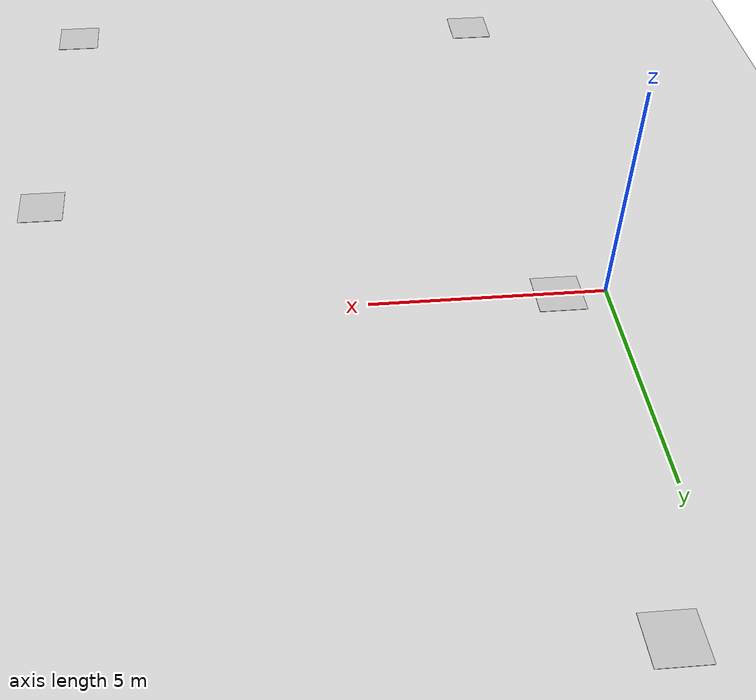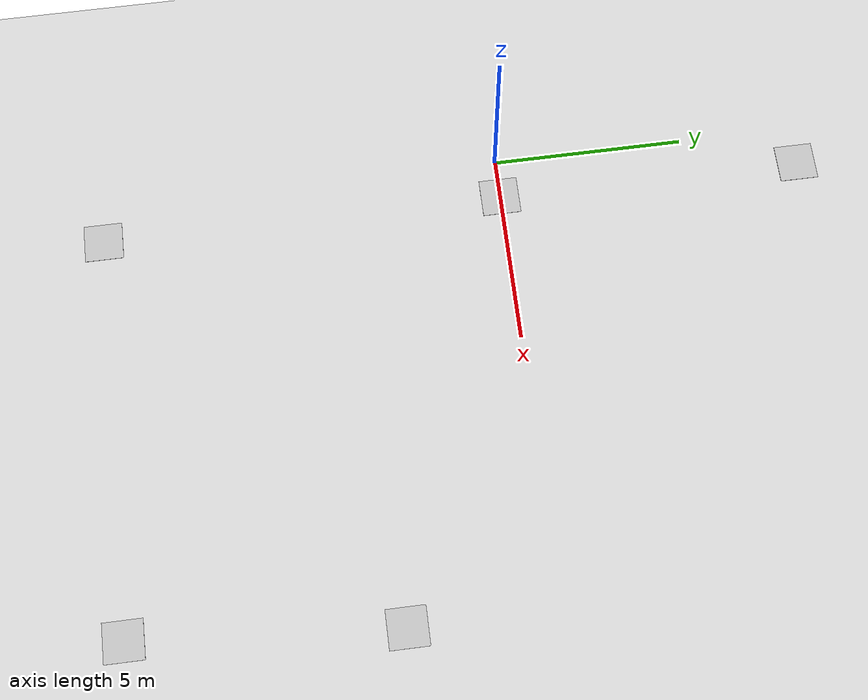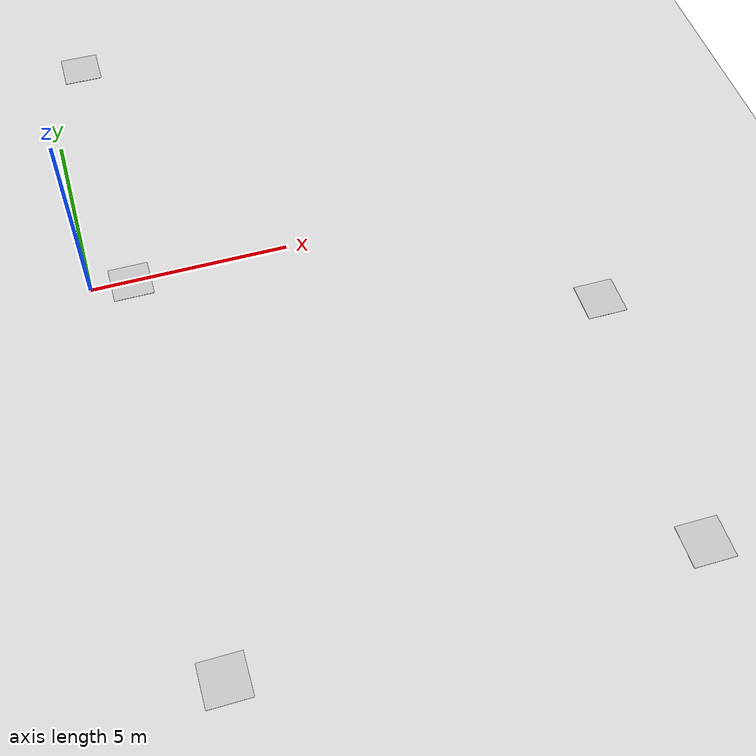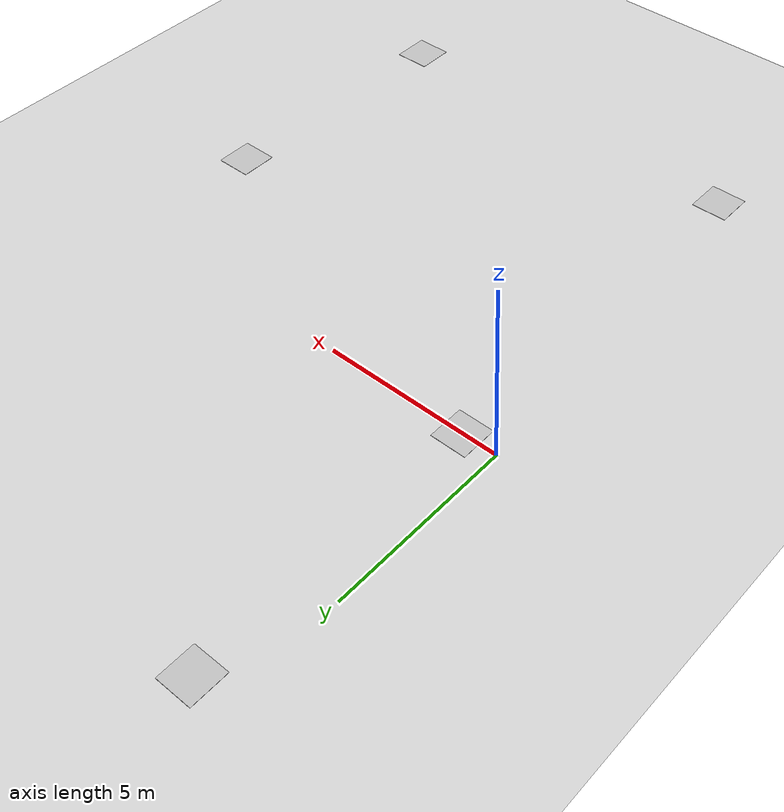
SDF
<sdf version="1.7">
 <world name="default">
  <light name="sun" type="directional">
   <pose>0 0 10 0 -0 0</pose>
   <diffuse>0.8 0.8 0.8 1</diffuse>
   <specular>0.2 0.2 0.2 1</specular>
   <attenuation>
    <range>1000</range>
    <constant>0.9</constant>
    <linear>0.01</linear>
    <quadratic>0.001</quadratic>
   </attenuation>
   <direction>0 0.5 -0.9</direction>
   <spot><inner_angle>0</inner_angle><outer_angle>0</outer_angle><falloff>0</falloff></spot>
  </light>
  <light name="point_light" type="point">
   <pose>0 -0.377195 6.59868 0 -0 0</pose>
   <diffuse>0.784314 0.784314 0.784314 1</diffuse>
   <specular>0.0980392 0.0980392 0.0980392 1</specular>
   <attenuation>
    <range>50</range>
    <constant>0.8</constant>
    <linear>0</linear>
    <quadratic>0.001</quadratic>
   </attenuation>
   <cast_shadows>0</cast_shadows>
   <direction>0 0 -1</direction>
   <spot><inner_angle>0</inner_angle><outer_angle>0</outer_angle><falloff>0</falloff></spot>
  </light>
  <model name="ground_plane">
   <static>1</static>
   <link name="link">
    <collision name="collision">
     <geometry><plane><normal>0 0 1</normal><size>100 100</size></plane></geometry>
     <surface>
      <contact><collide_bitmask>65535</collide_bitmask></contact>
      <friction><ode><mu>100</mu><mu2>50</mu2></ode></friction>
     </surface>
    </collision>
    <visual name="visual">
     <cast_shadows>0</cast_shadows>
     <geometry><plane><normal>0 0 1</normal><size>100 100</size></plane></geometry>
     <material>
      <script><uri>file://media/materials/scripts/gazebo.material</uri><name>Gazebo/Grey</name></script>
     </material>
    </visual>
   </link>
  </model>
  <gravity>0 0 -9.8</gravity>
  <magnetic_field>6e-06 2.3e-05 -4.2e-05</magnetic_field>
  <atmosphere type="adiabatic"/>
  <physics type="ode">
   <max_step_size>0.001</max_step_size>
   <real_time_factor>1</real_time_factor>
   <real_time_update_rate>1000</real_time_update_rate>
  </physics>
  <scene><ambient>0.4 0.4 0.4 1</ambient><background>0.7 0.7 0.7 1</background><shadows>1</shadows></scene>
  <audio><device>default</device></audio>
  <spherical_coordinates>
   <surface_model>EARTH_WGS84</surface_model>
   <latitude_deg>0</latitude_deg>
   <longitude_deg>0</longitude_deg>
   <elevation>0</elevation>
   <heading_deg>0</heading_deg>
  </spherical_coordinates>
  <model name="Apriltag36_11_00000">
   <link name="main">
    <visual name="main_Visual">
     <geometry><box><size>1 1 0.01</size></box></geometry>
     <material>
      <script>
       <uri>model://Apriltag36_11_00000/materials/scripts</uri>
       <uri>model://Apriltag36_11_00000/materials/textures</uri>
       <name>Apriltag36_11_00000</name>
      </script>
     </material>
    </visual>
   </link>
   <static>1</static>
   <pose>1 8 0 0 -0 0</pose>
  </model>
  <model name="Apriltag36_11_00001">
   <link name="main">
    <visual name="main_Visual">
     <geometry><box><size>1 1 0.01</size></box></geometry>
     <material>
      <script>
       <uri>model://Apriltag36_11_00001/materials/scripts</uri>
       <uri>model://Apriltag36_11_00001/materials/textures</uri>
       <name>Apriltag36_11_00001</name>
      </script>
     </material>
    </visual>
   </link>
   <static>1</static>
   <pose>1 0 0 0 -0 0</pose>
  </model>
  <model name="Apriltag36_11_00003">
   <link name="main">
    <visual name="main_Visual">
     <geometry><box><size>1 1 0.01</size></box></geometry>
     <material>
      <script>
       <uri>model://Apriltag36_11_00003/materials/scripts</uri>
       <uri>model://Apriltag36_11_00003/materials/textures</uri>
       <name>Apriltag36_11_00003</name>
      </script>
     </material>
    </visual>
   </link>
   <static>1</static>
   <pose>1 -10.5 0 0 -0 0</pose>
  </model>
  <model name="Apriltag36_11_00004">
   <link name="main">
    <visual name="main_Visual">
     <geometry><box><size>1 1 0.01</size></box></geometry>
     <material>
      <script>
       <uri>model://Apriltag36_11_00004/materials/scripts</uri>
       <uri>model://Apriltag36_11_00004/materials/textures</uri>
       <name>Apriltag36_11_00004</name>
      </script>
     </material>
    </visual>
   </link>
   <static>1</static>
   <pose>11.5 -10.5 0.2 0 -0 0</pose>
  </model>
  <model name="Apriltag36_11_00005">
   <link name="main">
    <visual name="main_Visual">
     <geometry><box><size>1 1 0.01</size></box></geometry>
     <material>
      <script>
       <uri>model://Apriltag36_11_00005/materials/scripts</uri>
       <uri>model://Apriltag36_11_00005/materials/textures</uri>
       <name>Apriltag36_11_00005</name>
      </script>
     </material>
    </visual>
   </link>
   <static>1</static>
   <pose>12 -3.75 0 0 -0 0</pose>
  </model>
 </world>
</sdf>
